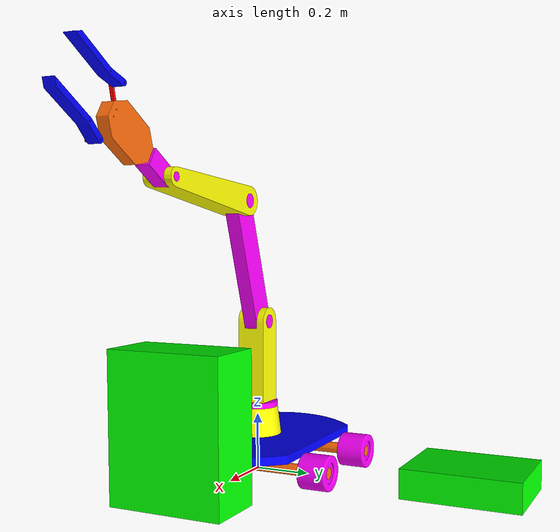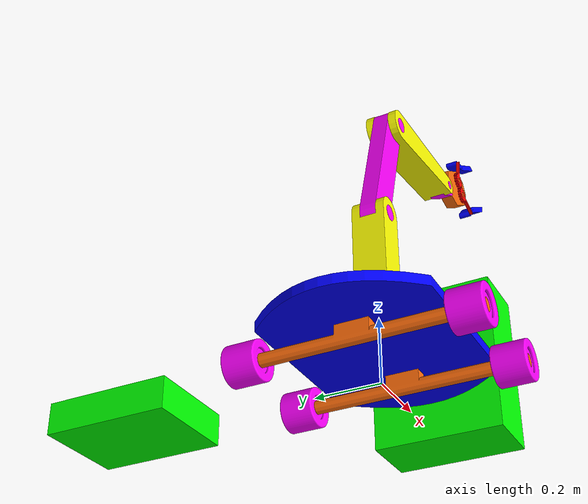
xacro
<?xml version="1.0"?>
<robot name="bot_manipulator" xmlns:xacro="https://www.ros.org/wiki/xacro">

  <xacro:include filename="$(find flip1_description)/urdf/rviz_material.xacro"/>
  <xacro:include filename="$(find flip1_description)/urdf/chassis_bot_xacro.xacro"/>
  <xacro:include filename="$(find flip1_description)/urdf/manipulator_xacro.xacro"/>
  <xacro:include filename="$(find flip1_description)/urdf/gripper_xacro.xacro"/>
  <xacro:include filename="$(find flip1_description)/urdf/gazebo.xacro"/>
  <link name="base_link"/>

  <joint name="bot_world_joint" type="fixed">
    <origin xyz="0 0 0.1" rpy="0 0 0"/>
    <parent link="base_link"/>
    <child link="base_link_bot"/>
  </joint>

  <joint name="bot_manipulator_joint" type="fixed">
    <origin xyz="0 0 0.03 " rpy=" 0 0 0"/>
    <parent link="base_link_bot" />
    <child link="base_link_arm"/>
  </joint>

  <joint name="manipulator_gripper_joint" type="revolute">
    <origin xyz="0 0 0.063" rpy="1.57075 0 0"/>
    <parent link="gripper_holder_link"/>
    <child link="base_link_gripper"/>
    <axis xyz="0 1 0" />
    <limit
      lower="-1.6"
      upper="1.6"
      effort="25"
      velocity="1" />
  </joint>

  <link name="table1">
    <visual>
      <origin xyz="0 0 0" rpy="0 0 0"/>
      <geometry>
        <box size="0.2 0.4 0.50"/>
      </geometry>
      <material name="green"/>
    </visual>
  </link>

  <joint name="table1_base_link_joint" type="fixed">
    <origin xyz="0.50 0 0.25" rpy="0 0 0"/>
    <parent link="base_link"/>
    <child link="table1"/>
  </joint>

  <link name="table2">
    <visual>
      <origin xyz="0 0 0" rpy="0 0 0"/>
      <geometry>
        <box size="0.3 0.4 0.1"/>
      </geometry>
      <material name="green"/>
    </visual>
  </link>

  <joint name="table2_base_link_joint" type="fixed">
    <origin xyz="0 0.8 0.05" rpy="0 0 0"/>
    <parent link="base_link"/>
    <child link="table2"/>
  </joint>

</robot>

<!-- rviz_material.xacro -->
<robot>

  <material name="blue">
    <color rgba="0 0 1 1"/>
  </material>

  <material name="red">
    <color rgba="1 0 0 1"/>
  </material>

  <material name="green">
    <color rgba="0 1 0 1"/>
  </material>

  <material name="purple">
    <color rgba="1 0 1 1"/>
  </material>

  <material name="orange">
    <color rgba="${255/255} ${108/255} ${10/255} 1" />
  </material>

  <material name="yellow">
    <color rgba="${255/255} ${255/255} 0 1"/>
  </material>

  <material name="brown">
    <color rgba="${158/255} ${104/255} ${42/255} 1"/>
  </material>-->

</robot>

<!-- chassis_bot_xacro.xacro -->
<robot name="bot" xmlns:xacro="https://www.ros.org/wiki/xacro">

  <xacro:macro name="visual_and_collision_origin">
    <origin xyz="0 0 0" rpy="0 0 0"/>
  </xacro:macro>

  <xacro:macro name="visual_and_collision_geometry" params="link_name">
    <geometry>
      <mesh filename="package://flip1_description/meshes/${link_name}.STL"/>
    </geometry>
  </xacro:macro>

  <xacro:macro name="visual_and_collision_for_link" params="material_name  gen_link_name">
    <visual>
      <xacro:visual_and_collision_origin/>
      <xacro:visual_and_collision_geometry link_name="${gen_link_name}"/>
      <material name="${material_name}"/>
    </visual>
    <collision>
      <xacro:visual_and_collision_origin/>
      <xacro:visual_and_collision_geometry link_name="${gen_link_name}"/>
    </collision>
  </xacro:macro>

  <xacro:macro name="link_tag" params="link material mass *inertial_origin **interia_matrix">
    <link name="${link}">
      <xacro:visual_and_collision_for_link material_name="${material}" gen_link_name="${link}"/>
      <inertial>
        <mass value="${mass}"/>
        <xacro:insert_block name="inertial_origin"/>
        <xacro:insert_block name="interia_matrix"/>
      </inertial>
    </link>
  </xacro:macro>

  <xacro:link_tag link="base_link_bot" material="blue" mass="9.976679411">
    <origin xyz="-1.84685805937335E-06 0 0.015" rpy="0 0 0" />
    <inertial_matrix>
      <inertia
        ixx="0.187958008238022" ixy="3.08331692261721E-07" ixz="3.17637355220364E-19"
        iyy="0.381816176166743" iyz="1.41513138596527E-18" izz="0.568277677102426" />
    </inertial_matrix>
  </xacro:link_tag>

  <xacro:link_tag link="link1" material="orange" mass="1.0019">
    <origin xyz="-1.1102E-16 -0.36 0.0026615" rpy="0 0 0"/>
    <inertial_matrix>
      <inertia
        ixx="0.03933" ixy="5.6898E-21" ixz="8.3057E-21"
        iyy="0.00026796" iyz="-2.4157E-19" izz="0.039273" />
   </inertial_matrix>
  </xacro:link_tag>

  <xacro:link_tag link="link2" material="orange" mass="1.0019">
    <origin xyz="-1.11022302462516E-16 -0.36 0.00266148520433351" rpy="0 0 0"/>
    <inertial_matrix>
      <inertia
        ixx="0.0393298433372476" ixy="1.31346575687572E-21" ixz="8.30571622249648E-21"
        iyy="0.000267958739020857" iyz="-9.65217337723654E-20" izz="0.0392729406311258" />
    </inertial_matrix>
  </xacro:link_tag>

  <xacro:link_tag link="link3" material="purple" mass="0.95841">
    <origin xyz="0 -2.7756E-17 0" rpy="0 0 0"/>
    <inertial_matrix>
      <inertia
        ixx="0.00172" ixy="6.5405E-20" ixz="7.1492E-20"
        iyy="0.0019649" iyz="-1.0822E-19" izz="0.00172" />
    </inertial_matrix>
  </xacro:link_tag>

  <xacro:link_tag link="link4" material="purple" mass="0.95841">
    <origin xyz="0 -1.1102E-16 0" rpy="0 0 0"/>
    <inertial_matrix>
      <inertia
        ixx="0.00172" ixy="3.8103E-20" ixz="7.1492E-20"
        iyy="0.0019649" iyz="-8.0921E-20" izz="0.00172"/>
    </inertial_matrix>
  </xacro:link_tag>

  <xacro:link_tag link="link5" material="purple" mass="0.95841">
    <origin xyz="1.11022302462516E-16 -2.77555756156289E-17 0" rpy="0 0 0"/>
    <inertial_matrix>
      <inertia
        ixx="0.00172004064353737" ixy="9.19911852675595E-22" ixz="5.42101086242752E-20"
        iyy="0.00196493476186237" iyz="-9.05839369835372E-20" izz="0.00172004064353737"/>
    </inertial_matrix>
  </xacro:link_tag>

  <xacro:link_tag link="link6" material="purple" mass="0.95841">
    <origin xyz="1.1102E-16 -1.1102E-16 0" rpy="0 0 0"/>
    <inertial_matrix>
      <inertia
        ixx="0.00172" ixy="-1.7049E-20" ixz="2.1684E-19"
        iyy="0.0019649" iyz="-9.2729E-20" izz="0.00172"/>
    </inertial_matrix>
  </xacro:link_tag>

 <joint name="joint1" type="fixed">
   <origin xyz="0.16597 0.36 -0.04" rpy="0 0 0" />
   <parent link="base_link_bot" />
   <child link="link1" />
 </joint>

 <joint name="joint2" type="fixed">
   <origin xyz="-0.16597 0.36 -0.04" rpy="0 0 0" />
   <parent link="base_link_bot" />
   <child link="link2" />
 </joint>

 <joint name="joint3" type="continuous">
   <origin xyz="0 -0.041744 0" rpy="0 0 0" />
   <parent link="link1" />
   <child link="link3" />
   <axis xyz="0 1 0" />
 </joint>

 <joint name="joint4" type="continuous">
   <origin xyz="0 -0.67826 0" rpy="0 0 0" />
   <parent link="link1" />
   <child link="link4" />
   <axis xyz="0 1 0" />
 </joint>

 <joint name="joint5" type="continuous">
   <origin xyz="0 -0.041744 0" rpy="0 0.082724 0" />
   <parent link="link2" />
   <child link="link5" />
   <axis xyz="0 1 0" />
 </joint>

 <joint name="joint6" type="continuous">
   <origin xyz="0 -0.67826 0" rpy="0 -0.55404 0" />
   <parent link="link2" />
   <child link="link6" />
   <axis xyz="0 1 0" />
 </joint>
</robot>

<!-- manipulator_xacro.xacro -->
<robot name="manipulator" xmlns:xacro="https://www.ros.org/wiki/xacro">

  <xacro:macro name="visual_and_collision_origin">
    <origin xyz="0 0 0" rpy="0 0 0"/>
  </xacro:macro>

  <xacro:macro name="visual_and_collision_geometry" params="link_name">
    <geometry>
      <mesh filename="package://flip1_description/meshes/${link_name}.STL"/>
    </geometry>
  </xacro:macro>

  <xacro:macro name="visual_and_collision_for_link" params="material_name  gen_link_name">
    <visual>
      <xacro:visual_and_collision_origin/>
      <xacro:visual_and_collision_geometry link_name="${gen_link_name}"/>
      <material name="${material_name}"/>
    </visual>
    <collision>
      <xacro:visual_and_collision_origin/>
      <xacro:visual_and_collision_geometry link_name="${gen_link_name}"/>
    </collision>
  </xacro:macro>

  <xacro:macro name="link_tag" params="link material mass *inertial_origin **interia_matrix">
    <link name="${link}">
      <xacro:visual_and_collision_for_link material_name="${material}" gen_link_name="${link}"/>
      <inertial>
        <mass value="${mass}"/>
        <xacro:insert_block name="inertial_origin"/>
        <xacro:insert_block name="interia_matrix"/>
      </inertial>
    </link>
  </xacro:macro>

  <xacro:link_tag link="base_link_arm" material="yellow" mass="1.7952">
    <origin xyz="1.2496E-07 -9.7714E-07 0.043629" rpy="0 0 0"/>
    <inertial_matrix>
      <inertia
        ixx="0.0042607" ixy="-2.5643E-08" ixz="-1.5443E-08"
        iyy="0.0042606" iyz="-1.6265E-08" izz="0.0059208"/>
    </inertial_matrix>
  </xacro:link_tag>

  <xacro:link_tag link="rotation_link" material="purple" mass="0.38734">
    <origin xyz="0 6.9389E-18 0.020598" rpy="0 0 0"/>
    <inertial_matrix>
      <inertia
        ixx="0.00049033" ixy="3.134E-20" ixz="4.3688E-20"
        iyy="0.00049033" iyz="-8.0027E-22" izz="0.00089765" />
    </inertial_matrix>
  </xacro:link_tag>

  <xacro:link_tag link="vertical_link" material="yellow" mass="2.8683">
    <origin xyz="0 0 0.14648" rpy="0 0 0"/>
    <inertial_matrix>
      <inertia
        ixx="0.024919" ixy="2.0329E-19" ixz="1.5006E-18"
        iyy="0.024772" iyz="2.04E-19" izz="0.0050439" />
    </inertial_matrix>
  </xacro:link_tag>

  <xacro:link_tag link="middle_arm_link" material="purple" mass="2.839">
    <origin xyz="5.5511E-17 -1.3878E-17 0.225" rpy="0 0 0"/>
    <inertial_matrix>
      <inertia
        ixx="0.072652" ixy="-5.421E-20" ixz="-7.9676E-19"
        iyy="0.073967" iyz="9.8764E-19" izz="0.002988" />
    </inertial_matrix>
  </xacro:link_tag>

  <xacro:link_tag link="end_link" material="yellow" mass="3.4568">
    <origin xyz="1.1102E-16 6.9389E-18 0.20744" rpy="0 0 0"/>
    <inertial_matrix>
      <inertia
        ixx="0.060655" ixy="7.1828E-19" ixz="4.0707E-18"
        iyy="0.059517" iyz="-2.6631E-18" izz="0.0051642" />
    </inertial_matrix>
  </xacro:link_tag>

  <xacro:link_tag link="gripper_holder_link" material="purple" mass="0.37775">
    <origin xyz="0 0 0.031338" rpy="0 0 0"/>
    <inertial_matrix>
      <inertia
        ixx="0.00058936" ixy="8.8938E-21" ixz="1.7754E-19" iyy="0.00056849"
        iyz="2.9434E-20" izz="0.00023348" />
    </inertial_matrix>
  </xacro:link_tag>

  <joint name="base_rotation_joint" type="revolute">
    <origin xyz="0 0 0.08" rpy="0 0 0.007562" />
    <parent link="base_link_arm" />
    <child link="rotation_link" />
    <axis xyz="0 0 -1" />
    <limit
      lower="-1.62"
      upper="0"
      effort="25"
      velocity="1" />
  </joint>

  <joint name="rotation_vertical_joint" type="fixed">
    <origin xyz="0 0 0.03" rpy="0 0 0" />
    <parent link="rotation_link" />
    <child link="vertical_link" />
  </joint>

  <joint name="vertical_middle_arm_joint" type="revolute">
    <origin xyz="0 0 0.3" rpy="0 0.31039 0" />
    <parent link="vertical_link" />
    <child link="middle_arm_link" />
    <axis xyz="0 -1 0" />
    <limit
      lower="-0.85"
      upper="0.33"
      effort="25"
      velocity="1" />
  </joint>

  <joint name="middle_end_joint" type="revolute">
    <origin xyz="0 0 0.45" rpy="0 1.1326 0" />
    <parent link="middle_arm_link" />
    <child link="end_link" />
    <axis xyz="0 1 0" />
    <limit
      lower="-2.0"
      upper="0.4"
      effort="25"
      velocity="1" />
  </joint>

  <joint name="gripper_holder_joint" type="revolute">
    <origin xyz="0 0 0.45" rpy="0 -0.43859 0" />
    <parent link="end_link" />
    <child link="gripper_holder_link" />
    <axis xyz="0 -1 0" />
    <limit
      lower="-3.0"
      upper="0.3"
      effort="25"
      velocity="1" />
  </joint>

</robot>

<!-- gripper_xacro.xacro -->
<robot name="" xmlns:xacro="https://www.ros.org/wiki/xacro">

  <xacro:macro name="visual_and_collision_origin">
    <origin xyz="0 0 0" rpy="0 0 0"/>
  </xacro:macro>

  <xacro:macro name="visual_and_collision_geometry" params="link_name">
    <geometry>
      <mesh filename="package://flip1_description/meshes/${link_name}.STL"/>
    </geometry>
  </xacro:macro>

  <xacro:macro name="visual_and_collision_for_link" params="material_name  gen_link_name">
    <visual>
      <xacro:visual_and_collision_origin/>
      <xacro:visual_and_collision_geometry link_name="${gen_link_name}"/>
      <material name="${material_name}"/>
    </visual>
    <collision>
      <xacro:visual_and_collision_origin/>
      <xacro:visual_and_collision_geometry link_name="${gen_link_name}"/>
    </collision>
  </xacro:macro>

  <xacro:macro name="link_tag" params="link material mass *inertial_origin **interia_matrix">
    <link name="${link}">
      <xacro:visual_and_collision_for_link material_name="${material}" gen_link_name="${link}"/>
      <inertial>
        <mass value="${mass}"/>
        <xacro:insert_block name="inertial_origin"/>
        <xacro:insert_block name="interia_matrix"/>
      </inertial>
    </link>
  </xacro:macro>

  <xacro:link_tag link="base_link_gripper" material="orange" mass="0.98099">
    <origin xyz="0 0.14142 0.00016012" rpy="0 0 0"/>
    <inertial_matrix>
      <inertia
        ixx="0.003388"
        ixy="-1.1855E-19"
        ixz="-1.5339E-20"
        iyy="0.0012787"
        iyz="-4.4891E-06"
        izz="0.0044032" />
    </inertial_matrix>
  </xacro:link_tag>

  <xacro:link_tag link="gear1_link" material="red" mass="0.02723">
    <origin xyz="-2.77555756156289E-17 0.0175862034544711 5.55111512312578E-17" rpy="0 0 0"/>
    <inertial_matrix>
      <inertia
        ixx="3.02981038903534E-05"
        ixy="1.6940658945086E-21"
        ixz="7.49263431833363E-22"
        iyy="4.50525088859917E-06"
        iyz="1.5400867235027E-21"
        izz="3.43494877805828E-05" />
    </inertial_matrix>
  </xacro:link_tag>

  <xacro:link_tag link="finger_gear1_link" material="blue" mass="0.17145">
    <origin xyz="-0.012289 0.101 0" rpy="0 0 0"/>
    <inertial_matrix>
      <inertia
        ixx="0.0007122"
        ixy="4.0775E-05"
        ixz="4.039E-21"
        iyy="3.2189E-05"
        iyz="-6.5264E-21"
        izz="0.00069867" />
    </inertial_matrix>
  </xacro:link_tag>

  <xacro:link_tag link="gear2_link" material="red" mass="0.02723">
    <origin xyz="4.33006840808159E-06 0.0177884712258021 5.55111512312578E-17" rpy="0 0 0"/>
    <inertial_matrix>
      <inertia
        ixx="3.0626740029709E-05"
        ixy="-1.15573930909179E-09"
        ixz="-1.4165993432485E-21"
        iyy="4.4831636497222E-06"
        iyz="4.26143905320326E-22"
        izz="3.46553024908243E-05"/>
    </inertial_matrix>
  </xacro:link_tag>

  <xacro:link_tag link="finger_gear2_link" material="blue" mass="0.17145">
    <origin xyz="-0.012289 0.101 -5.5511E-17" rpy="0 0 0"/>
    <inertial_matrix>
      <inertia
        ixx="0.0007122"
        ixy="4.0775E-05"
        ixz="-3.8232E-21"
        iyy="3.2189E-05"
        iyz="5.6109E-21"
        izz="0.00069867" />
    </inertial_matrix>
  </xacro:link_tag>

  <joint name="base_gear1_joint" type="revolute">
    <origin
      xyz="-0.0275 0.17 0.025"
      rpy="0 0 0.78573" />
    <parent
      link="base_link_gripper" />
    <child
      link="gear1_link" />
    <axis
      xyz="0 0 1" />
    <limit
      lower="-0.53"
      upper="1.19"
      effort="25"
      velocity="1" />
  </joint>

  <joint name="finger_gear1_joint" type="revolute">
    <origin
      xyz="0 0.099495 -0.025"
      rpy="-3.1416 0 2.3612" />
    <parent
      link="gear1_link" />
    <child
      link="finger_gear1_link" />
    <axis
      xyz="0 0 -1" />
    <limit
      lower="-1.23"
      upper="0.43"
      effort="25"
      velocity="1" />
  </joint>

  <joint name="base_gear2_joint" type="revolute">
    <origin
      xyz="0.0275 0.17 0.025"
      rpy="0 0 -0.78573" />
    <parent
      link="base_link_gripper" />
    <child
      link="gear2_link" />
    <axis
      xyz="0 0 -1" />
    <limit
      lower="-0.53"
      upper="1.19"
      effort="25"
      velocity="1" />
  </joint>

  <joint name="finger_gear2_joint" type="revolute">
    <origin xyz="0 0.1 -0.025" rpy="0 0 0.78989" />
    <parent link="gear2_link" />
    <child link="finger_gear2_link" />
    <axis xyz="0 0 -1" />
    <limit
      lower="-1.23"
      upper="0.43"
      effort="25"
      velocity="1" />
  </joint>

</robot>
